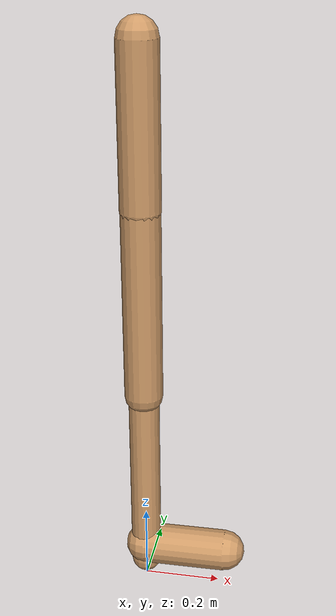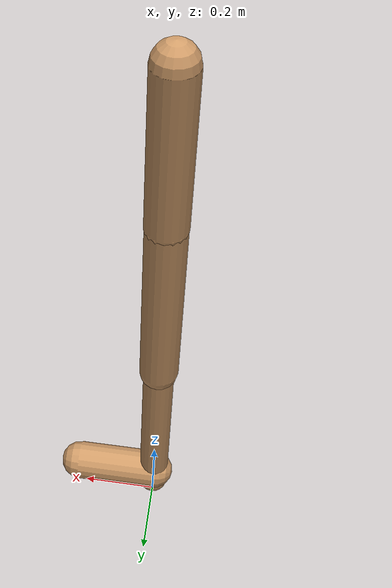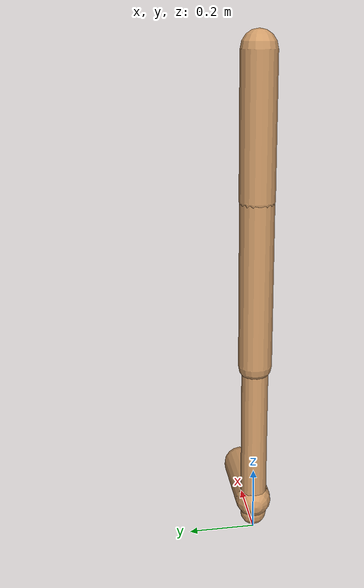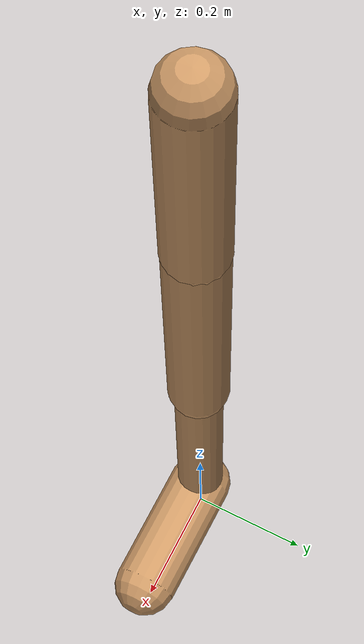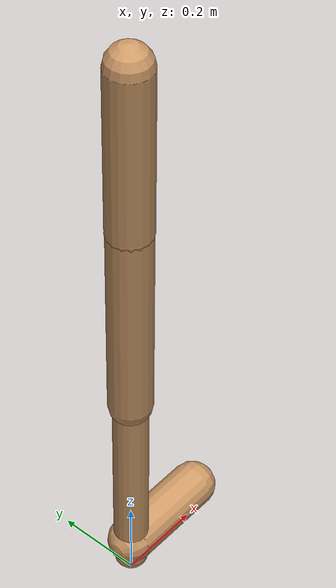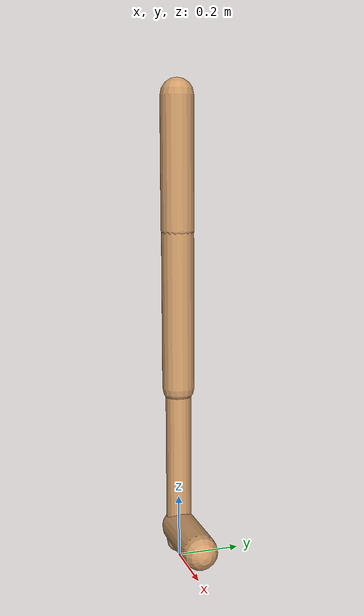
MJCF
<mujoco model="walker2d">
  <compiler angle="degree" coordinate="global" inertiafromgeom="true" />
  <default>
    <joint armature="0.01" damping=".1" limited="true" />
    <geom conaffinity="0" condim="3" contype="1" density="1000" friction="0.8 .1 .1" rgba="0.8 0.6 .4 1" />
  </default>
  <option integrator="RK4" timestep="0.002" />
  <worldbody>

    <body name="torso" pos="0 0 0.08640119290890558">
      <joint armature="0" axis="1 0 0" damping="0" limited="false" name="ignorex" pos="0 0 0" stiffness="0" type="slide" />
      <joint armature="0" axis="0 0 1" damping="0" limited="false" name="ignorez" pos="0 0 0" ref="1.25" stiffness="0" type="slide" />
      <joint armature="0" axis="0 1 0" damping="0" limited="false" name="ignorey" pos="0 0 0" stiffness="0" type="hinge" />
      <geom fromto="0 0 1.45 0 0 1.05" name="torso_geom" size="0.050896938768665516" type="capsule" />
      <body name="thigh">
        <joint axis="0 -1 0" name="thigh_joint" pos="0 0 1.05" range="-150 0" type="hinge" />
        <geom fromto="0.0 0.0 1.05 0.0 0.0 0.5590731191484131" name="thigh_geom" size="0.049598729527443736" type="capsule" />
        <body name="leg" pos="0.0 0.0 -0.04092688085158691">
          <joint axis="0 -1 0" name="leg_joint" pos="0 0 0.6" range="-150 0" type="hinge" />
          <geom fromto="0.0 0.0 0.6 0.0 0.0 0.054525687942681283" name="leg_geom" size="0.03967898362195498" type="capsule" />
          <body name="foot" pos="0.0 0.0 -0.04547431205731872">
            <joint axis="0 -1 0" name="foot_joint" pos="0 0 0.1" range="-45 45" type="hinge" />
            <geom fromto="-0.0 0.0 0.1 0.21550455572769767 0.0 0.1" name="foot_geom" size="0.054075674728078296" type="capsule" />
          </body>
        </body>
      </body>

      <body name="thigh_left">
        <joint axis="0 -1 0" name="thigh_left_joint" pos="0 0 1.05" range="-150 0" type="hinge" />
        <geom fromto="0.0 0.0 1.05 0.0 0.0 0.5590731191484131" name="thigh_left_geom" rgba=".7 .3 .6 1" size="0.049598729527443736" type="capsule" />
        <body name="leg_left" pos="0.0 0.0 -0.04092688085158691">
          <joint axis="0 -1 0" name="leg_left_joint" pos="0 0 0.6" range="-150 0" type="hinge" />
          <geom fromto="0.0 0.0 0.6 0.0 0.0 0.054525687942681283" name="leg_left_geom" rgba=".7 .3 .6 1" size="0.03967898362195498" type="capsule" />
          <body name="foot_left" pos="0.0 0.0 -0.04547431205731872">
            <joint axis="0 -1 0" name="foot_left_joint" pos="0 0 0.1" range="-45 45" type="hinge" />
            <geom fromto="-0.0 0.0 0.1 0.21550455572769767 0.0 0.1" name="foot_left_geom" rgba=".7 .3 .6 1" size="0.054075674728078296" type="capsule" />
          </body>
        </body>
      </body>
    </body>
  </worldbody>
  <actuator>

    <motor ctrllimited="true" ctrlrange="-1.0 1.0" gear="100" joint="thigh_joint" />
    <motor ctrllimited="true" ctrlrange="-1.0 1.0" gear="100" joint="leg_joint" />
    <motor ctrllimited="true" ctrlrange="-1.0 1.0" gear="100" joint="foot_joint" />
    <motor ctrllimited="true" ctrlrange="-1.0 1.0" gear="100" joint="thigh_left_joint" />
    <motor ctrllimited="true" ctrlrange="-1.0 1.0" gear="100" joint="leg_left_joint" />
    <motor ctrllimited="true" ctrlrange="-1.0 1.0" gear="100" joint="foot_left_joint" />

  </actuator>
</mujoco>
